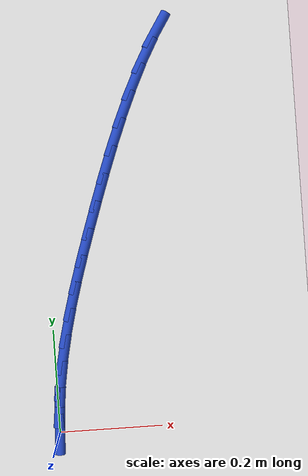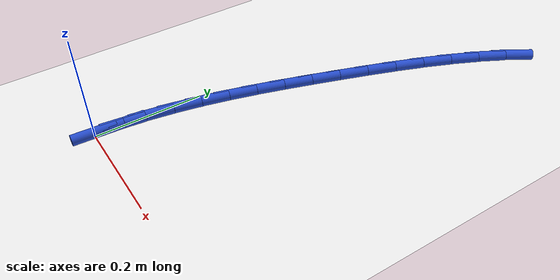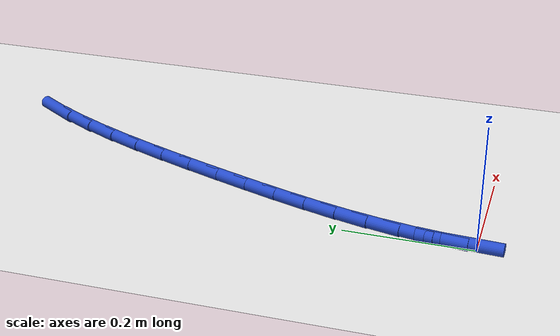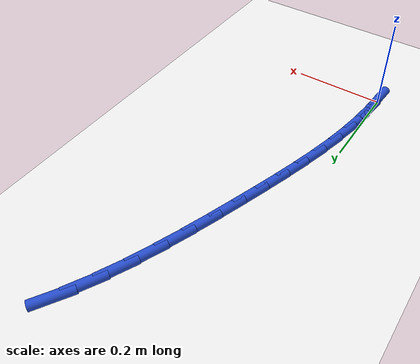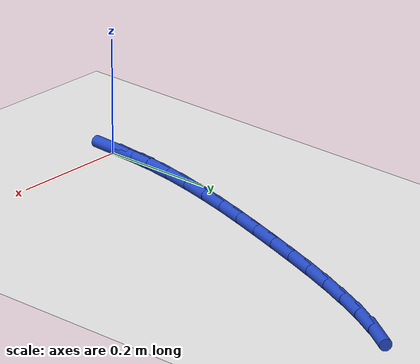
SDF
<sdf version="1.6">
 <world name="default">
  <model name="ground_plane">
   <static>1</static>
   <link name="link">
    <collision name="collision">
     <geometry><plane><normal>0 0 1</normal><size>100 100</size></plane></geometry>
     <surface><friction><ode><mu>100</mu><mu2>50</mu2></ode></friction></surface>
    </collision>
    <visual name="visual">
     <cast_shadows>0</cast_shadows>
     <geometry><plane><normal>0 0 1</normal><size>100 100</size></plane></geometry>
     <material>
      <script><uri>file://media/materials/scripts/gazebo.material</uri><name>Gazebo/WhiteGlow</name></script>
     </material>
    </visual>
   </link>
  </model>
  <model name="line">
   <link name="link_0">
    <pose>1.734723475976807e-17 -1.5265566588595902e-16 0.01 0 1.57 1.5107257477533145</pose>
    <collision name="collision">
     <geometry><cylinder><radius>0.01</radius><length>0.08</length></cylinder></geometry>
    </collision>
    <visual name="visual">
     <material>
      <script><name>Gazebo/Blue</name><uri>file://media/materials/scripts/gazebo.material</uri></script>
     </material>
     <geometry><cylinder><radius>0.01</radius><length>0.08</length></cylinder></geometry>
    </visual>
   </link>
   <link name="link_1">
    <pose>0.0030970636344004538 0.0514950506932398 0.01 0 1.57 1.4526678016341241</pose>
    <collision name="collision">
     <geometry><cylinder><radius>0.01</radius><length>0.08</length></cylinder></geometry>
    </collision>
    <visual name="visual">
     <material>
      <script><name>Gazebo/Blue</name><uri>file://media/materials/scripts/gazebo.material</uri></script>
     </material>
     <geometry><cylinder><radius>0.01</radius><length>0.08</length></cylinder></geometry>
    </visual>
   </link>
   <link name="link_2">
    <pose>0.009151567106093004 0.10250995173038797 0.01 0 1.57 1.4008432162956856</pose>
    <collision name="collision">
     <geometry><cylinder><radius>0.01</radius><length>0.08</length></cylinder></geometry>
    </collision>
    <visual name="visual">
     <material>
      <script><name>Gazebo/Blue</name><uri>file://media/materials/scripts/gazebo.material</uri></script>
     </material>
     <geometry><cylinder><radius>0.01</radius><length>0.08</length></cylinder></geometry>
    </visual>
   </link>
   <link name="link_3">
    <pose>0.017853275384806383 0.15321668054593046 0.01 0 1.57 1.3558845297584416</pose>
    <collision name="collision">
     <geometry><cylinder><radius>0.01</radius><length>0.08</length></cylinder></geometry>
    </collision>
    <visual name="visual">
     <material>
      <script><name>Gazebo/Blue</name><uri>file://media/materials/scripts/gazebo.material</uri></script>
     </material>
     <geometry><cylinder><radius>0.01</radius><length>0.08</length></cylinder></geometry>
    </visual>
   </link>
   <link name="link_4">
    <pose>0.02889195344026932 0.2037872145743534 0.01 0 1.57 1.3181361157823994</pose>
    <collision name="collision">
     <geometry><cylinder><radius>0.01</radius><length>0.08</length></cylinder></geometry>
    </collision>
    <visual name="visual">
     <material>
      <script><name>Gazebo/Blue</name><uri>file://media/materials/scripts/gazebo.material</uri></script>
     </material>
     <geometry><cylinder><radius>0.01</radius><length>0.08</length></cylinder></geometry>
    </visual>
   </link>
   <link name="link_5">
    <pose>0.04195736624221055 0.2543935312501429 0.01 0 1.57 1.2877071524294774</pose>
    <collision name="collision">
     <geometry><cylinder><radius>0.01</radius><length>0.08</length></cylinder></geometry>
    </collision>
    <visual name="visual">
     <material>
      <script><name>Gazebo/Blue</name><uri>file://media/materials/scripts/gazebo.material</uri></script>
     </material>
     <geometry><cylinder><radius>0.01</radius><length>0.08</length></cylinder></geometry>
    </visual>
   </link>
   <link name="link_6">
    <pose>0.05673927876035881 0.30520760800778535 0.01 0 1.57 1.264531891017261</pose>
    <collision name="collision">
     <geometry><cylinder><radius>0.01</radius><length>0.08</length></cylinder></geometry>
    </collision>
    <visual name="visual">
     <material>
      <script><name>Gazebo/Blue</name><uri>file://media/materials/scripts/gazebo.material</uri></script>
     </material>
     <geometry><cylinder><radius>0.01</radius><length>0.08</length></cylinder></geometry>
    </visual>
   </link>
   <link name="link_7">
    <pose>0.0729274559644428 0.3564014222817665 0.01 0 1.57 1.2484250278614968</pose>
    <collision name="collision">
     <geometry><cylinder><radius>0.01</radius><length>0.08</length></cylinder></geometry>
    </collision>
    <visual name="visual">
     <material>
      <script><name>Gazebo/Blue</name><uri>file://media/materials/scripts/gazebo.material</uri></script>
     </material>
     <geometry><cylinder><radius>0.01</radius><length>0.08</length></cylinder></geometry>
    </visual>
   </link>
   <link name="link_8">
    <pose>0.09021166282419128 0.4081469515065728 0.01 0 1.57 1.2388290954331571</pose>
    <collision name="collision">
     <geometry><cylinder><radius>0.01</radius><length>0.08</length></cylinder></geometry>
    </collision>
    <visual name="visual">
     <material>
      <script><name>Gazebo/Blue</name><uri>file://media/materials/scripts/gazebo.material</uri></script>
     </material>
     <geometry><cylinder><radius>0.01</radius><length>0.08</length></cylinder></geometry>
    </visual>
   </link>
   <link name="link_9">
    <pose>0.10829365370096712 0.4606004233760592 0.01 0 1.57 1.2289346282761369</pose>
    <collision name="collision">
     <geometry><cylinder><radius>0.01</radius><length>0.08</length></cylinder></geometry>
    </collision>
    <visual name="visual">
     <material>
      <script><name>Gazebo/Blue</name><uri>file://media/materials/scripts/gazebo.material</uri></script>
     </material>
     <geometry><cylinder><radius>0.01</radius><length>0.08</length></cylinder></geometry>
    </visual>
   </link>
   <link name="link_10">
    <pose>0.12714139057040721 0.5135683646979344 0.01 0 1.57 1.212229698128397</pose>
    <collision name="collision">
     <geometry><cylinder><radius>0.01</radius><length>0.08</length></cylinder></geometry>
    </collision>
    <visual name="visual">
     <material>
      <script><name>Gazebo/Blue</name><uri>file://media/materials/scripts/gazebo.material</uri></script>
     </material>
     <geometry><cylinder><radius>0.01</radius><length>0.08</length></cylinder></geometry>
    </visual>
   </link>
   <link name="link_11">
    <pose>0.1469838439929107 0.566514431045243 0.01 0 1.57 1.188189695460614</pose>
    <collision name="collision">
     <geometry><cylinder><radius>0.01</radius><length>0.08</length></cylinder></geometry>
    </collision>
    <visual name="visual">
     <material>
      <script><name>Gazebo/Blue</name><uri>file://media/materials/scripts/gazebo.material</uri></script>
     </material>
     <geometry><cylinder><radius>0.01</radius><length>0.08</length></cylinder></geometry>
    </visual>
   </link>
   <link name="link_12">
    <pose>0.16806093398780694 0.6188878943472663 0.01 0 1.57 1.1562634860405452</pose>
    <collision name="collision">
     <geometry><cylinder><radius>0.01</radius><length>0.08</length></cylinder></geometry>
    </collision>
    <visual name="visual">
     <material>
      <script><name>Gazebo/Blue</name><uri>file://media/materials/scripts/gazebo.material</uri></script>
     </material>
     <geometry><cylinder><radius>0.01</radius><length>0.08</length></cylinder></geometry>
    </visual>
   </link>
   <link name="link_13">
    <pose>0.19061258057442523 0.6701380265332856 0.01 0 1.57 1.1156061505791022</pose>
    <collision name="collision">
     <geometry><cylinder><radius>0.01</radius><length>0.08</length></cylinder></geometry>
    </collision>
    <visual name="visual">
     <material>
      <script><name>Gazebo/Blue</name><uri>file://media/materials/scripts/gazebo.material</uri></script>
     </material>
     <geometry><cylinder><radius>0.01</radius><length>0.08</length></cylinder></geometry>
    </visual>
   </link>
   <link name="link_14">
    <pose>0.21487870377209484 0.719714099532582 0.01 0 1.57 1.0650827127361802</pose>
    <collision name="collision">
     <geometry><cylinder><radius>0.01</radius><length>0.08</length></cylinder></geometry>
    </collision>
    <visual name="visual">
     <material>
      <script><name>Gazebo/Blue</name><uri>file://media/materials/scripts/gazebo.material</uri></script>
     </material>
     <geometry><cylinder><radius>0.01</radius><length>0.08</length></cylinder></geometry>
    </visual>
   </link>
   <link name="link_15">
    <pose>0.24109922360014524 0.7670653852744374 0.01 0 1.57 1.0032940689407928</pose>
    <collision name="collision">
     <geometry><cylinder><radius>0.01</radius><length>0.08</length></cylinder></geometry>
    </collision>
    <visual name="visual">
     <material>
      <script><name>Gazebo/Blue</name><uri>file://media/materials/scripts/gazebo.material</uri></script>
     </material>
     <geometry><cylinder><radius>0.01</radius><length>0.08</length></cylinder></geometry>
    </visual>
   </link>
   <link name="link_141">
    <pose>0.0031584647757339317 0.05141826155792546 0.01 0 1.57 1.5094465052537187</pose>
    <collision name="collision">
     <geometry><cylinder><radius>0.01</radius><length>0.08</length></cylinder></geometry>
    </collision>
    <visual name="visual">
     <material>
      <script><name>Gazebo/Blue</name><uri>file://media/materials/scripts/gazebo.material</uri></script>
     </material>
     <geometry><cylinder><radius>0.01</radius><length>0.08</length></cylinder></geometry>
    </visual>
   </link>
  </model>
 </world>
</sdf>
